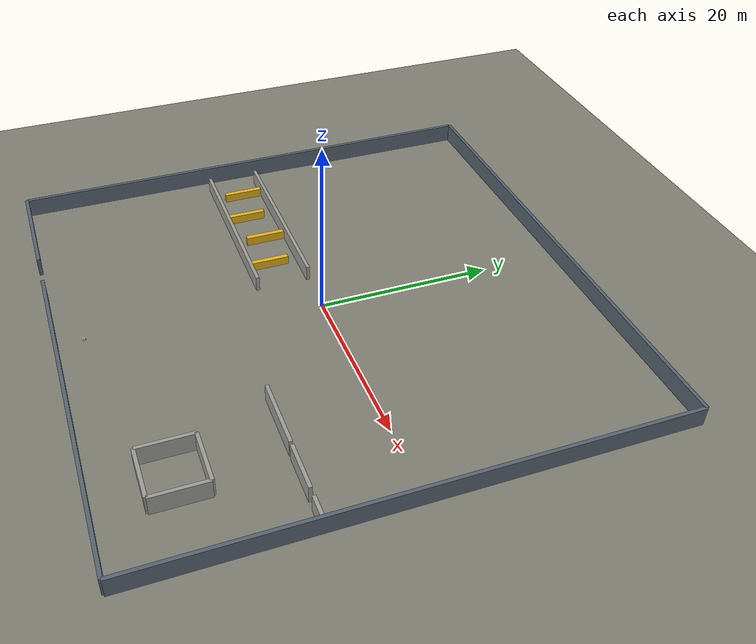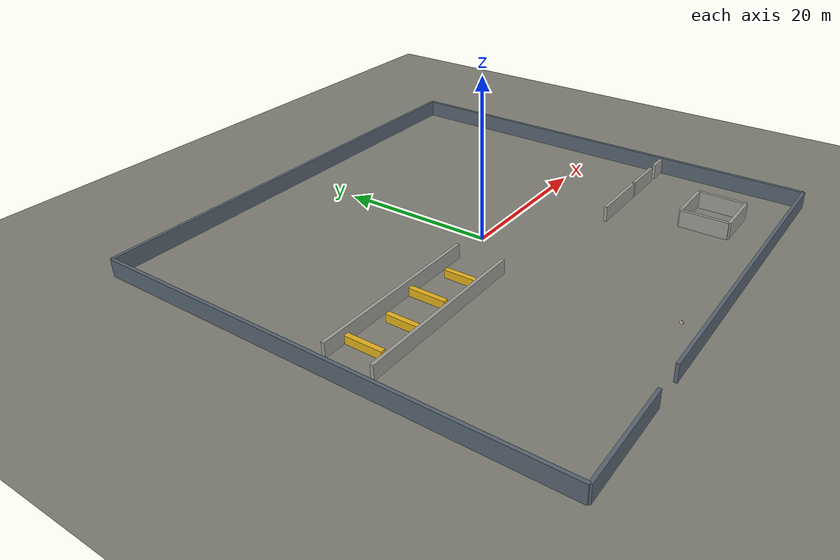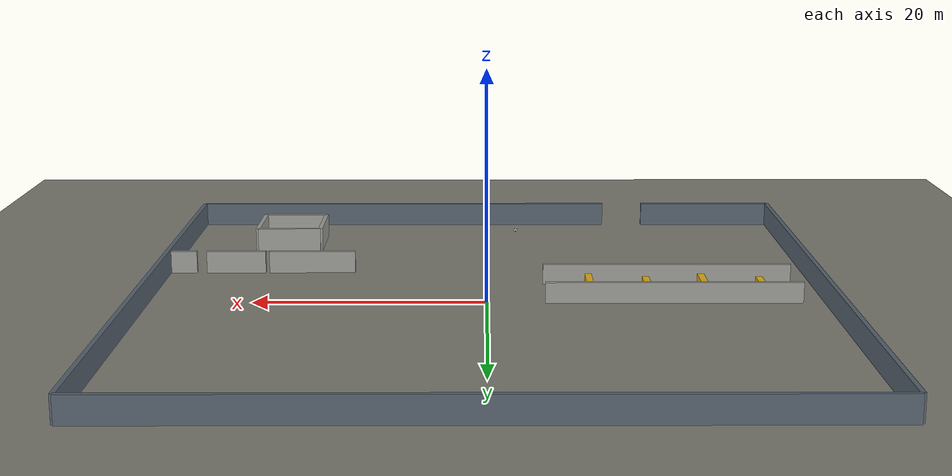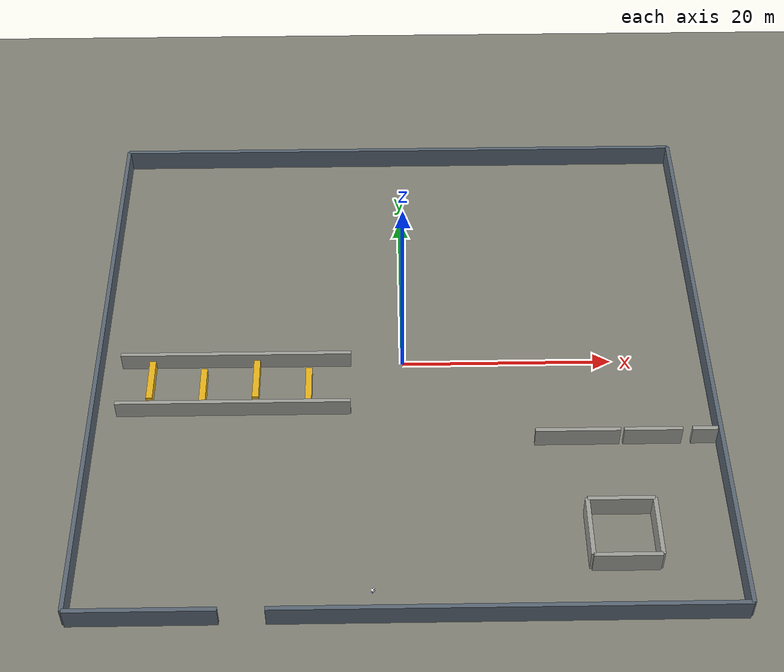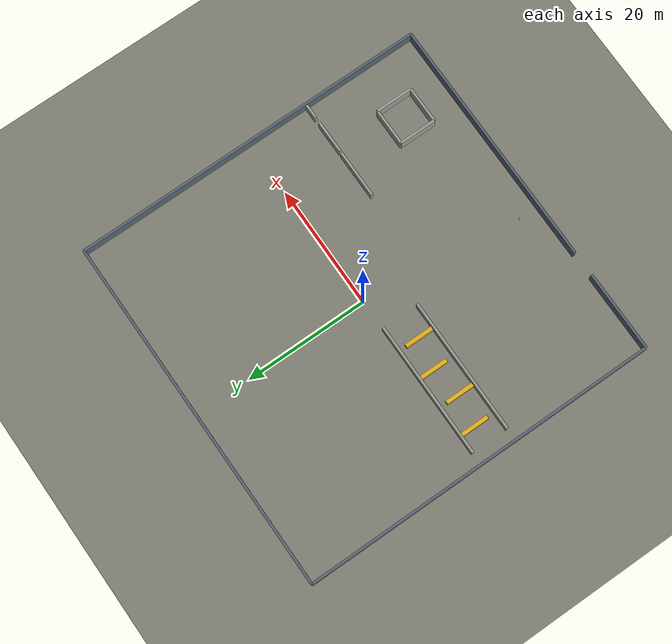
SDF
<sdf version="1.6">
 <world name="w2_container_yard">
  <physics name="4ms" type="ignored">
   <max_step_size>0.004</max_step_size>
   <real_time_factor>1.0</real_time_factor>
  </physics>
  <plugin filename="ignition-gazebo-physics-system" name="gz::sim::systems::Physics"/>
  <plugin filename="ignition-gazebo-scene-broadcaster-system" name="gz::sim::systems::SceneBroadcaster"/>
  <plugin filename="ignition-gazebo-user-commands-system" name="gz::sim::systems::UserCommands"/>
  <plugin filename="ignition-gazebo-sensors-system" name="gz::sim::systems::Sensors">
   <render_engine>ogre2</render_engine>
  </plugin>
  <light type="directional" name="sun">
   <pose>0 0 500 0 0 0</pose>
   <diffuse>0.85 0.85 0.8 1</diffuse>
   <specular>0.2 0.2 0.2 1</specular>
   <direction>-0.4 0.2 -0.9</direction>
  </light>
  <model name="ground_plane">
   <static>true</static>
   <link name="link">
    <collision name="collision">
     <geometry><plane><normal>0 0 1</normal><size>300.0 300.0</size></plane></geometry>
    </collision>
    <visual name="visual">
     <geometry><plane><normal>0 0 1</normal><size>300.0 300.0</size></plane></geometry>
     <material>
      <ambient>0.5 0.5 0.46 1</ambient>
      <diffuse>0.5 0.5 0.46 1</diffuse>
      <specular>0.05 0.05 0.05 1</specular>
     </material>
    </visual>
   </link>
  </model>
  <model name="fence_S0">
   <static>true</static>
   <pose>-22.5000 -29.0000 1.1000 0 0 0.00000</pose>
   <link name="link">
    <collision name="c"><geometry><box><size>13.0000 0.4000 2.2000</size></box></geometry></collision>
    <visual name="v">
     <geometry><box><size>13.0000 0.4000 2.2000</size></box></geometry>
     <material>
      <ambient>0.350 0.400 0.450 1</ambient>
      <diffuse>0.350 0.400 0.450 1</diffuse>
      <specular>0.1 0.1 0.1 1</specular>
     </material>
    </visual>
   </link>
  </model>
  <model name="fence_S1">
   <static>true</static>
   <pose>8.5000 -29.0000 1.1000 0 0 0.00000</pose>
   <link name="link">
    <collision name="c"><geometry><box><size>41.0000 0.4000 2.2000</size></box></geometry></collision>
    <visual name="v">
     <geometry><box><size>41.0000 0.4000 2.2000</size></box></geometry>
     <material>
      <ambient>0.350 0.400 0.450 1</ambient>
      <diffuse>0.350 0.400 0.450 1</diffuse>
      <specular>0.1 0.1 0.1 1</specular>
     </material>
    </visual>
   </link>
  </model>
  <model name="fence_N0">
   <static>true</static>
   <pose>0.0000 29.0000 1.1000 0 0 0.00000</pose>
   <link name="link">
    <collision name="c"><geometry><box><size>58.0000 0.4000 2.2000</size></box></geometry></collision>
    <visual name="v">
     <geometry><box><size>58.0000 0.4000 2.2000</size></box></geometry>
     <material>
      <ambient>0.350 0.400 0.450 1</ambient>
      <diffuse>0.350 0.400 0.450 1</diffuse>
      <specular>0.1 0.1 0.1 1</specular>
     </material>
    </visual>
   </link>
  </model>
  <model name="fence_W0">
   <static>true</static>
   <pose>-29.0000 0.0000 1.1000 0 0 1.57080</pose>
   <link name="link">
    <collision name="c"><geometry><box><size>58.0000 0.4000 2.2000</size></box></geometry></collision>
    <visual name="v">
     <geometry><box><size>58.0000 0.4000 2.2000</size></box></geometry>
     <material>
      <ambient>0.350 0.400 0.450 1</ambient>
      <diffuse>0.350 0.400 0.450 1</diffuse>
      <specular>0.1 0.1 0.1 1</specular>
     </material>
    </visual>
   </link>
  </model>
  <model name="fence_E0">
   <static>true</static>
   <pose>29.0000 0.0000 1.1000 0 0 1.57080</pose>
   <link name="link">
    <collision name="c"><geometry><box><size>58.0000 0.4000 2.2000</size></box></geometry></collision>
    <visual name="v">
     <geometry><box><size>58.0000 0.4000 2.2000</size></box></geometry>
     <material>
      <ambient>0.350 0.400 0.450 1</ambient>
      <diffuse>0.350 0.400 0.450 1</diffuse>
      <specular>0.1 0.1 0.1 1</specular>
     </material>
    </visual>
   </link>
  </model>
  <model name="chi_N">
   <static>true</static>
   <pose>-16.0000 0.0000 0.9000 0 0 0.00000</pose>
   <link name="link">
    <collision name="c"><geometry><box><size>22.0000 0.4000 1.8000</size></box></geometry></collision>
    <visual name="v">
     <geometry><box><size>22.0000 0.4000 1.8000</size></box></geometry>
     <material>
      <ambient>0.620 0.620 0.600 1</ambient>
      <diffuse>0.620 0.620 0.600 1</diffuse>
      <specular>0.1 0.1 0.1 1</specular>
     </material>
    </visual>
   </link>
  </model>
  <model name="chi_S">
   <static>true</static>
   <pose>-16.0000 -6.0000 0.9000 0 0 0.00000</pose>
   <link name="link">
    <collision name="c"><geometry><box><size>22.0000 0.4000 1.8000</size></box></geometry></collision>
    <visual name="v">
     <geometry><box><size>22.0000 0.4000 1.8000</size></box></geometry>
     <material>
      <ambient>0.620 0.620 0.600 1</ambient>
      <diffuse>0.620 0.620 0.600 1</diffuse>
      <specular>0.1 0.1 0.1 1</specular>
     </material>
    </visual>
   </link>
  </model>
  <model name="chi_b0">
   <static>true</static>
   <pose>-24.0000 -2.4000 0.5000 0 0 -1.57080</pose>
   <link name="link">
    <collision name="c"><geometry><box><size>4.8000 0.6000 1.0000</size></box></geometry></collision>
    <visual name="v">
     <geometry><box><size>4.8000 0.6000 1.0000</size></box></geometry>
     <material>
      <ambient>0.900 0.700 0.100 1</ambient>
      <diffuse>0.900 0.700 0.100 1</diffuse>
      <specular>0.1 0.1 0.1 1</specular>
     </material>
    </visual>
   </link>
  </model>
  <model name="chi_b1">
   <static>true</static>
   <pose>-19.0000 -3.6000 0.5000 0 0 1.57080</pose>
   <link name="link">
    <collision name="c"><geometry><box><size>4.8000 0.6000 1.0000</size></box></geometry></collision>
    <visual name="v">
     <geometry><box><size>4.8000 0.6000 1.0000</size></box></geometry>
     <material>
      <ambient>0.900 0.700 0.100 1</ambient>
      <diffuse>0.900 0.700 0.100 1</diffuse>
      <specular>0.1 0.1 0.1 1</specular>
     </material>
    </visual>
   </link>
  </model>
  <model name="chi_b2">
   <static>true</static>
   <pose>-14.0000 -2.4000 0.5000 0 0 -1.57080</pose>
   <link name="link">
    <collision name="c"><geometry><box><size>4.8000 0.6000 1.0000</size></box></geometry></collision>
    <visual name="v">
     <geometry><box><size>4.8000 0.6000 1.0000</size></box></geometry>
     <material>
      <ambient>0.900 0.700 0.100 1</ambient>
      <diffuse>0.900 0.700 0.100 1</diffuse>
      <specular>0.1 0.1 0.1 1</specular>
     </material>
    </visual>
   </link>
  </model>
  <model name="chi_b3">
   <static>true</static>
   <pose>-9.0000 -3.6000 0.5000 0 0 1.57080</pose>
   <link name="link">
    <collision name="c"><geometry><box><size>4.8000 0.6000 1.0000</size></box></geometry></collision>
    <visual name="v">
     <geometry><box><size>4.8000 0.6000 1.0000</size></box></geometry>
     <material>
      <ambient>0.900 0.700 0.100 1</ambient>
      <diffuse>0.900 0.700 0.100 1</diffuse>
      <specular>0.1 0.1 0.1 1</specular>
     </material>
    </visual>
   </link>
  </model>
  <model name="pocket_S0">
   <static>true</static>
   <pose>19.0000 -24.0000 1.1000 0 0 0.00000</pose>
   <link name="link">
    <collision name="c"><geometry><box><size>6.0000 0.4000 2.2000</size></box></geometry></collision>
    <visual name="v">
     <geometry><box><size>6.0000 0.4000 2.2000</size></box></geometry>
     <material>
      <ambient>0.620 0.620 0.600 1</ambient>
      <diffuse>0.620 0.620 0.600 1</diffuse>
      <specular>0.1 0.1 0.1 1</specular>
     </material>
    </visual>
   </link>
  </model>
  <model name="pocket_N0">
   <static>true</static>
   <pose>19.0000 -18.0000 1.1000 0 0 0.00000</pose>
   <link name="link">
    <collision name="c"><geometry><box><size>6.0000 0.4000 2.2000</size></box></geometry></collision>
    <visual name="v">
     <geometry><box><size>6.0000 0.4000 2.2000</size></box></geometry>
     <material>
      <ambient>0.620 0.620 0.600 1</ambient>
      <diffuse>0.620 0.620 0.600 1</diffuse>
      <specular>0.1 0.1 0.1 1</specular>
     </material>
    </visual>
   </link>
  </model>
  <model name="pocket_W0">
   <static>true</static>
   <pose>16.0000 -21.0000 1.1000 0 0 1.57080</pose>
   <link name="link">
    <collision name="c"><geometry><box><size>6.0000 0.4000 2.2000</size></box></geometry></collision>
    <visual name="v">
     <geometry><box><size>6.0000 0.4000 2.2000</size></box></geometry>
     <material>
      <ambient>0.620 0.620 0.600 1</ambient>
      <diffuse>0.620 0.620 0.600 1</diffuse>
      <specular>0.1 0.1 0.1 1</specular>
     </material>
    </visual>
   </link>
  </model>
  <model name="pocket_E0">
   <static>true</static>
   <pose>22.0000 -21.0000 1.1000 0 0 1.57080</pose>
   <link name="link">
    <collision name="c"><geometry><box><size>6.0000 0.4000 2.2000</size></box></geometry></collision>
    <visual name="v">
     <geometry><box><size>6.0000 0.4000 2.2000</size></box></geometry>
     <material>
      <ambient>0.620 0.620 0.600 1</ambient>
      <diffuse>0.620 0.620 0.600 1</diffuse>
      <specular>0.1 0.1 0.1 1</specular>
     </material>
    </visual>
   </link>
  </model>
  <model name="nb_0">
   <static>true</static>
   <pose>15.9125 -10.0000 1.0000 0 0 0.00000</pose>
   <link name="link">
    <collision name="c"><geometry><box><size>7.8250 0.4000 2.0000</size></box></geometry></collision>
    <visual name="v">
     <geometry><box><size>7.8250 0.4000 2.0000</size></box></geometry>
     <material>
      <ambient>0.620 0.620 0.600 1</ambient>
      <diffuse>0.620 0.620 0.600 1</diffuse>
      <specular>0.1 0.1 0.1 1</specular>
     </material>
    </visual>
   </link>
  </model>
  <model name="nb_1">
   <static>true</static>
   <pose>22.8625 -10.0000 1.0000 0 0 0.00000</pose>
   <link name="link">
    <collision name="c"><geometry><box><size>5.3750 0.4000 2.0000</size></box></geometry></collision>
    <visual name="v">
     <geometry><box><size>5.3750 0.4000 2.0000</size></box></geometry>
     <material>
      <ambient>0.620 0.620 0.600 1</ambient>
      <diffuse>0.620 0.620 0.600 1</diffuse>
      <specular>0.1 0.1 0.1 1</specular>
     </material>
    </visual>
   </link>
  </model>
  <model name="nb_2">
   <static>true</static>
   <pose>27.7250 -10.0000 1.0000 0 0 0.00000</pose>
   <link name="link">
    <collision name="c"><geometry><box><size>2.5500 0.4000 2.0000</size></box></geometry></collision>
    <visual name="v">
     <geometry><box><size>2.5500 0.4000 2.0000</size></box></geometry>
     <material>
      <ambient>0.620 0.620 0.600 1</ambient>
      <diffuse>0.620 0.620 0.600 1</diffuse>
      <specular>0.1 0.1 0.1 1</specular>
     </material>
    </visual>
   </link>
  </model>
  <include>
   <name>nav_ugv</name>
   <uri>model://nav_ugv</uri>
   <pose>-3.000 -26.000 0.000 0 0 0.0000</pose>
   <plugin filename="ignition-gazebo-diff-drive-system" name="gz::sim::systems::DiffDrive">
    <left_joint>left_wheel_joint</left_joint>
    <left_joint>rear_left_wheel_joint</left_joint>
    <right_joint>right_wheel_joint</right_joint>
    <right_joint>rear_right_wheel_joint</right_joint>
    <wheel_separation>0.49</wheel_separation>
    <wheel_radius>0.098</wheel_radius>
    <topic>cmd_vel</topic>
    <odom_topic>odometry</odom_topic>
    <frame_id>nav_ugv/wheel_odom</frame_id>
    <child_frame_id>nav_ugv/wheel_odom_base</child_frame_id>
    <odom_publish_frequency>30</odom_publish_frequency>
   </plugin>
   <plugin filename="ignition-gazebo-odometry-publisher-system" name="gz::sim::systems::OdometryPublisher">
    <dimensions>2</dimensions>
    <odom_frame>nav_ugv/odom</odom_frame>
    <robot_base_frame>nav_ugv/base_link</robot_base_frame>
    <odom_publish_frequency>30</odom_publish_frequency>
   </plugin>
  </include>
  <model name="overhead_overview_camera">
   <static>true</static>
   <pose>0.00 0.00 150.0 0 1.5707963 1.5707963</pose>
   <link name="link">
    <sensor name="room_overview_camera" type="camera">
     <always_on>true</always_on>
     <update_rate>10.0</update_rate>
     <topic>/room_overhead/image</topic>
     <camera>
      <horizontal_fov>0.4076</horizontal_fov>
      <image><width>1440</width><height>1440</height></image>
      <clip><near>0.5</near><far>400</far></clip>
     </camera>
    </sensor>
   </link>
  </model>
 </world>
</sdf>

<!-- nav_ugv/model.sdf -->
<sdf version="1.6">
  <model name="nav_ugv">
    <link name="base_link">
      <!-- Chassis center sits at wheel_radius + chassis_z/2 = 0.05 + 0.075
           = 0.125m above the ground - just tall enough that the box's
           bottom face clears the wheels' contact patch. -->
      <pose>0 0 0.125 0 0 0</pose>
      <inertial>
        <mass>1.5</mass>
        <inertia>
          <ixx>0.0138</ixx>
          <ixy>0</ixy>
          <ixz>0</ixz>
          <iyy>0.0138</iyy>
          <iyz>0</iyz>
          <izz>0.0225</izz>
        </inertia>
      </inertial>
      <visual name="chassis_visual">
        <geometry>
          <box>
            <size>0.3 0.3 0.15</size>
          </box>
        </geometry>
        <material>
          <ambient>1 1 1 1</ambient>
          <diffuse>1 1 1 1</diffuse>
          <specular>0.3 0.3 0.3 1</specular>
        </material>
      </visual>
      <collision name="chassis_collision">
        <geometry>
          <box>
            <size>0.3 0.3 0.15</size>
          </box>
        </geometry>
      </collision>

      <visual name="lidar_visual">
        <pose>0.1 0 0.095 0 0 0</pose>
        <geometry>
          <cylinder>
            <radius>0.05</radius>
            <length>0.04</length>
          </cylinder>
        </geometry>
        <material>
          <ambient>0.6 0 0 1</ambient>
          <diffuse>0.6 0 0 1</diffuse>
        </material>
      </visual>
      <sensor name="lidar" type="gpu_lidar">
        <pose>0.1 0 0.095 0 0 0</pose>
        <topic>nav_ugv/scan</topic>
        <update_rate>10</update_rate>
        <always_on>true</always_on>
        <visualize>false</visualize>
        <lidar>
          <scan>
            <horizontal>
              <samples>360</samples>
              <resolution>1</resolution>
              <min_angle>-3.14159</min_angle>
              <max_angle>3.14159</max_angle>
            </horizontal>
            <vertical>
              <samples>1</samples>
              <resolution>1</resolution>
              <min_angle>0</min_angle>
              <max_angle>0</max_angle>
            </vertical>
          </scan>
          <range>
            <min>0.3</min>
            <max>12.0</max>
            <resolution>0.01</resolution>
          </range>
        </lidar>
      </sensor>
    </link>

    <link name="left_wheel">
      <pose>0 0.2 0.05 -1.5708 0 0</pose>
      <inertial>
        <mass>0.2</mass>
        <inertia>
          <ixx>0.00013</ixx>
          <ixy>0</ixy>
          <ixz>0</ixz>
          <iyy>0.00013</iyy>
          <iyz>0</iyz>
          <izz>0.00025</izz>
        </inertia>
      </inertial>
      <visual name="visual">
        <geometry>
          <cylinder>
            <radius>0.05</radius>
            <length>0.04</length>
          </cylinder>
        </geometry>
        <material>
          <ambient>0.2 0.2 1 1</ambient>
          <diffuse>0.2 0.2 1 1</diffuse>
        </material>
      </visual>
      <collision name="collision">
        <geometry>
          <sphere>
            <radius>0.05</radius>
          </sphere>
        </geometry>
      </collision>
    </link>

    <link name="right_wheel">
      <pose>0 -0.2 0.05 -1.5708 0 0</pose>
      <inertial>
        <mass>0.2</mass>
        <inertia>
          <ixx>0.00013</ixx>
          <ixy>0</ixy>
          <ixz>0</ixz>
          <iyy>0.00013</iyy>
          <iyz>0</iyz>
          <izz>0.00025</izz>
        </inertia>
      </inertial>
      <visual name="visual">
        <geometry>
          <cylinder>
            <radius>0.05</radius>
            <length>0.04</length>
          </cylinder>
        </geometry>
        <material>
          <ambient>0.2 0.2 1 1</ambient>
          <diffuse>0.2 0.2 1 1</diffuse>
        </material>
      </visual>
      <collision name="collision">
        <geometry>
          <sphere>
            <radius>0.05</radius>
          </sphere>
        </geometry>
      </collision>
    </link>

    <link name="caster_wheel">
      <pose>-0.13 0 0.03 0 0 0</pose>
      <inertial>
        <mass>0.1</mass>
        <inertia>
          <ixx>0.000036</ixx>
          <ixy>0</ixy>
          <ixz>0</ixz>
          <iyy>0.000036</iyy>
          <iyz>0</iyz>
          <izz>0.000036</izz>
        </inertia>
      </inertial>
      <visual name="visual">
        <geometry>
          <sphere>
            <radius>0.03</radius>
          </sphere>
        </geometry>
        <material>
          <ambient>0.1 0.1 0.1 1</ambient>
          <diffuse>0.1 0.1 0.1 1</diffuse>
        </material>
      </visual>
      <collision name="collision">
        <geometry>
          <sphere>
            <radius>0.03</radius>
          </sphere>
        </geometry>
        <surface>
          <friction>
            <ode>
              <mu>0.001</mu>
              <mu2>0.001</mu2>
            </ode>
          </friction>
        </surface>
      </collision>
    </link>

    <link name="front_caster_wheel">
      <pose>0.13 0 0.03 0 0 0</pose>
      <inertial>
        <mass>0.1</mass>
        <inertia>
          <ixx>0.000036</ixx>
          <ixy>0</ixy>
          <ixz>0</ixz>
          <iyy>0.000036</iyy>
          <iyz>0</iyz>
          <izz>0.000036</izz>
        </inertia>
      </inertial>
      <visual name="visual">
        <geometry>
          <sphere>
            <radius>0.03</radius>
          </sphere>
        </geometry>
        <material>
          <ambient>0.1 0.1 0.1 1</ambient>
          <diffuse>0.1 0.1 0.1 1</diffuse>
        </material>
      </visual>
      <collision name="collision">
        <geometry>
          <sphere>
            <radius>0.03</radius>
          </sphere>
        </geometry>
        <surface>
          <friction>
            <ode>
              <mu>0.001</mu>
              <mu2>0.001</mu2>
            </ode>
          </friction>
        </surface>
      </collision>
    </link>

    <joint name="left_wheel_joint" type="revolute">
      <parent>base_link</parent>
      <child>left_wheel</child>
      <axis>
        <xyz>0 0 1</xyz>
        <limit>
          <lower>-1.79769e+308</lower>
          <upper>1.79769e+308</upper>
        </limit>
      </axis>
    </joint>

    <joint name="right_wheel_joint" type="revolute">
      <parent>base_link</parent>
      <child>right_wheel</child>
      <axis>
        <xyz>0 0 1</xyz>
        <limit>
          <lower>-1.79769e+308</lower>
          <upper>1.79769e+308</upper>
        </limit>
      </axis>
    </joint>

    <joint name="front_caster_wheel_joint" type="ball">
      <parent>base_link</parent>
      <child>front_caster_wheel</child>
    </joint>

    <joint name="caster_wheel_joint" type="ball">
      <parent>base_link</parent>
      <child>caster_wheel</child>
    </joint>

    <link name="front_camera_link">
      <pose>0.18 0 0.05 0 0.6 0</pose>
      <visual name="front_camera_visual">
        <geometry>
          <box>
            <size>0.03 0.05 0.03</size>
          </box>
        </geometry>
        <material>
          <ambient>0.05 0.05 0.05 1</ambient>
          <diffuse>0.05 0.05 0.05 1</diffuse>
        </material>
      </visual>
      <sensor name="front_camera" type="rgbd_camera">
        <pose>0 0 0 0 0 0</pose>
        <always_on>true</always_on>
        <update_rate>10</update_rate>
        <visualize>true</visualize>
        <topic>nav_ugv/front_camera</topic>
        <camera>
          <horizontal_fov>1.047</horizontal_fov>
          <image>
            <width>320</width>
            <height>240</height>
          </image>
          <clip>
            <near>0.1</near>
            <far>8.0</far>
          </clip>
        </camera>
      </sensor>
    </link>
    <joint name="front_camera_joint" type="fixed">
      <parent>base_link</parent>
      <child>front_camera_link</child>
    </joint>

    <link name="video_camera_link">
      <pose>0.1 0 0.22 0 0.15 0</pose>
      <inertial>
        <mass>0.02</mass>
        <inertia>
          <ixx>0.000005</ixx>
          <iyy>0.000005</iyy>
          <izz>0.000005</izz>
          <ixy>0</ixy>
          <ixz>0</ixz>
          <iyz>0</iyz>
        </inertia>
      </inertial>
      <visual name="video_camera_visual">
        <geometry>
          <box>
            <size>0.03 0.05 0.03</size>
          </box>
        </geometry>
        <material>
          <ambient>0.05 0.05 0.05 1</ambient>
          <diffuse>0.05 0.05 0.05 1</diffuse>
        </material>
      </visual>
      <sensor name="video_camera" type="camera">
        <pose>0 0 0 0 0 0</pose>
        <always_on>true</always_on>
        <update_rate>10</update_rate>
        <visualize>true</visualize>
        <topic>nav_ugv/video_camera</topic>
        <camera>
          <horizontal_fov>1.3</horizontal_fov>
          <image>
            <width>320</width>
            <height>240</height>
          </image>
          <clip>
            <near>0.1</near>
            <far>15.0</far>
          </clip>
        </camera>
      </sensor>
    </link>
    <joint name="video_camera_joint" type="fixed">
      <parent>base_link</parent>
      <child>video_camera_link</child>
    </joint>
  </model>
</sdf>
